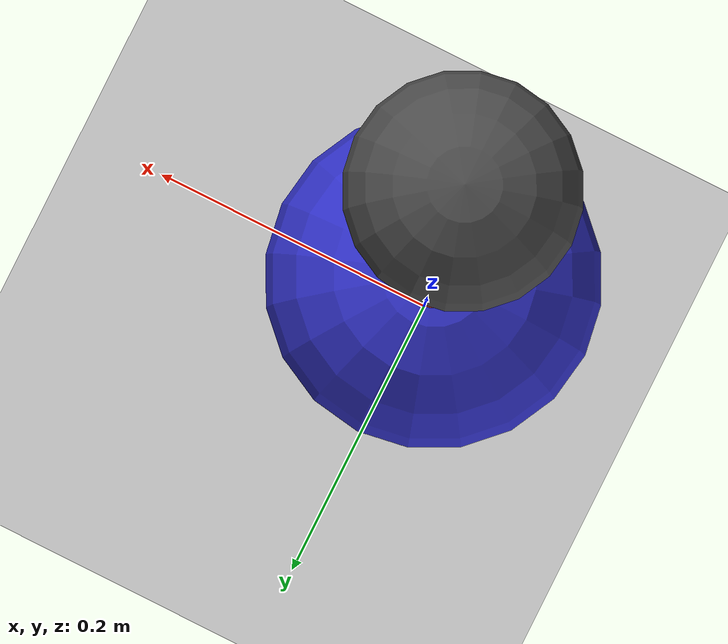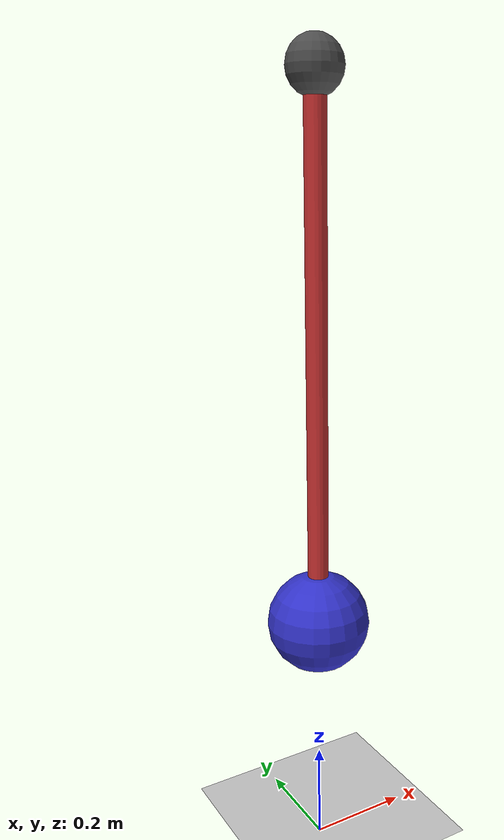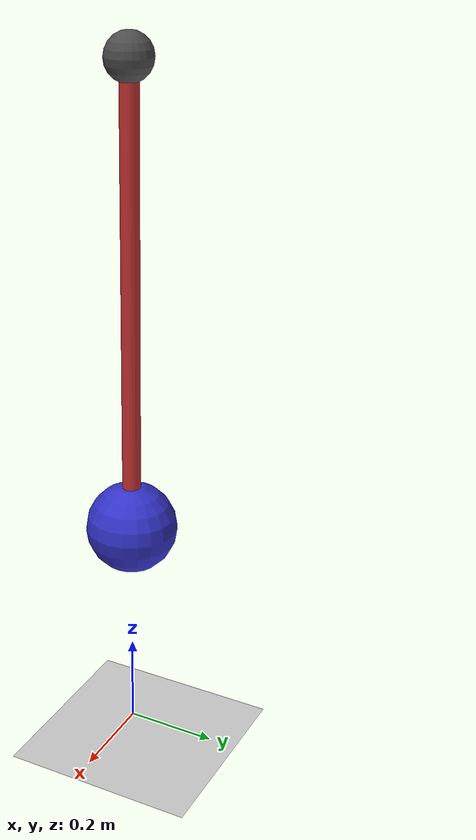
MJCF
<mujoco model="pendulum">
    <option timestep="0.02" gravity="0 0 -9.81"/>

    <worldbody>
        <!-- Ground plane -->
        <geom type="plane" size="5 5 0.1" rgba="0.8 0.8 0.8 1"/>

        <!-- Pendulum base (fixed) -->
        <body name="base" pos="0 0 1.5">
            <geom type="sphere" size="0.05" rgba="0.3 0.3 0.3 1" mass="0"/>

            <!-- Pendulum arm -->
            <body name="pole" pos="0 0 0">
                <joint name="hinge" type="hinge" axis="0 1 0" damping="0.1"/>
                <geom type="capsule" fromto="0 0 0 0 0 -1" size="0.02" mass="1" rgba="0.8 0.2 0.2 1"/>

                <!-- Pendulum bob -->
                <body name="bob" pos="0 0 -1">
                    <geom type="sphere" size="0.1" mass="1" rgba="0.2 0.2 0.8 1"/>
                </body>
            </body>
        </body>
    </worldbody>

    <actuator>
        <motor joint="hinge" ctrlrange="-5 5" gear="1"/>
    </actuator>

    <sensor>
        <jointpos joint="hinge"/>
        <jointvel joint="hinge"/>
    </sensor>
</mujoco>
